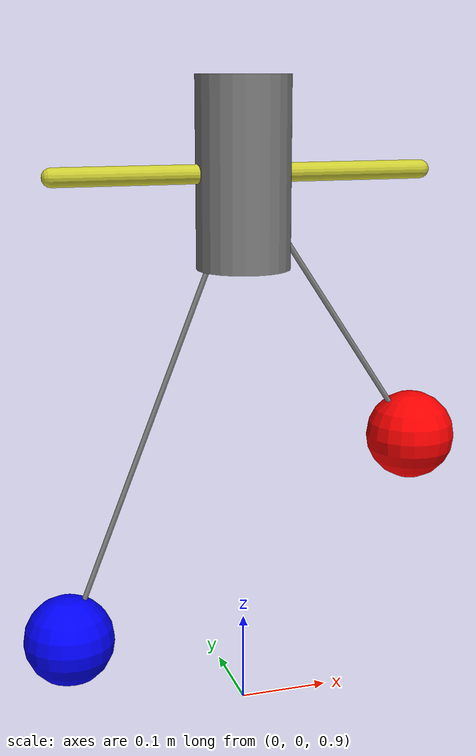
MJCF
<mujoco model="atwood_machine">
  <compiler angle="radian" />
  <option timestep="0.01" />
  <default>
    <joint armature="0" damping="0.1" stiffness="0" />
    <geom condim="3" friction="0.5 0.1 0.1" />
  </default>
  <worldbody>
    <body name="object_1" pos="0 0 1.5">
      <geom type="cylinder" size="0.05 0.1" rgba="0.5 0.5 0.5 1" />
    </body>
    <body name="object_2" pos="0 0 1.5">
      <geom type="capsule" fromto="-0.2 0 0 0.2 0 0" size="0.01" rgba="0.8 0.8 0.2 1" />
    </body>
    <body name="object_3" pos="-0.2 0 1">
      <joint name="object_3_joint" type="slide" axis="0 0 1" />
      <geom type="sphere" size="0.05" mass="0.5" rgba="0 0 1 1" />
      <site name="object_3_site" pos="0 0 0" />
    </body>
    <body name="object_4" pos="0.2 0 1.2">
      <joint name="object_4_joint" type="slide" axis="0 0 1" />
      <geom type="sphere" size="0.05" mass="1.0" rgba="1 0 0 1" />
      <site name="object_4_site" pos="0 0 0" />
    </body>
    <site name="pulley_site" pos="0 0 1.5" />
  </worldbody>
  <tendon>
    <spatial>
      <site site="object_3_site" />
      <site site="pulley_site" />
      <site site="object_4_site" />
    </spatial>
  </tendon>
<joint name="joint_object_3_object_2" type="revolute" body1="object_3" body2="object_2" /><joint name="joint_object_4_object_2" type="revolute" body1="object_4" body2="object_2" /><joint name="joint_object_2_object_1" type="revolute" body1="object_2" body2="object_1" /></mujoco>
